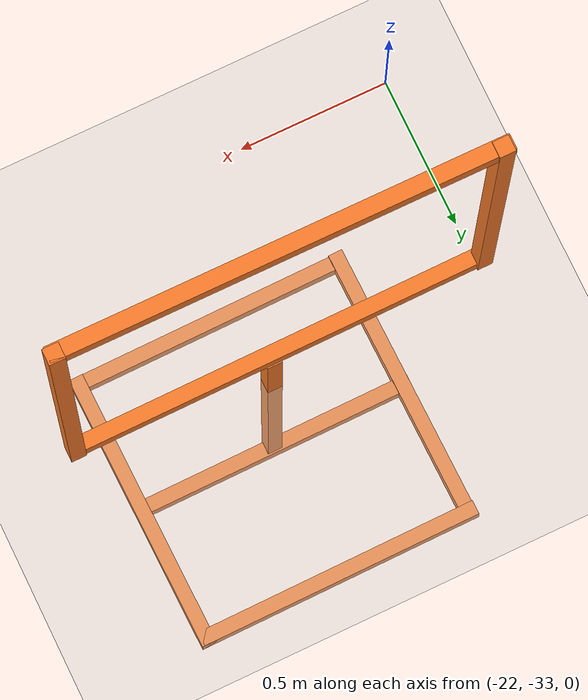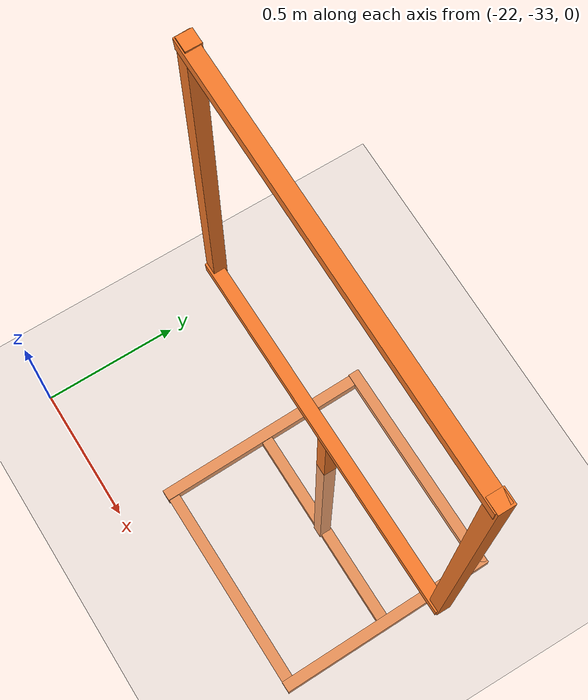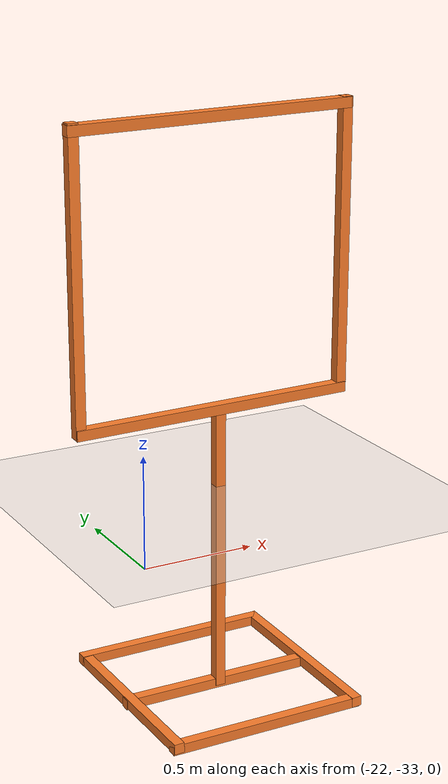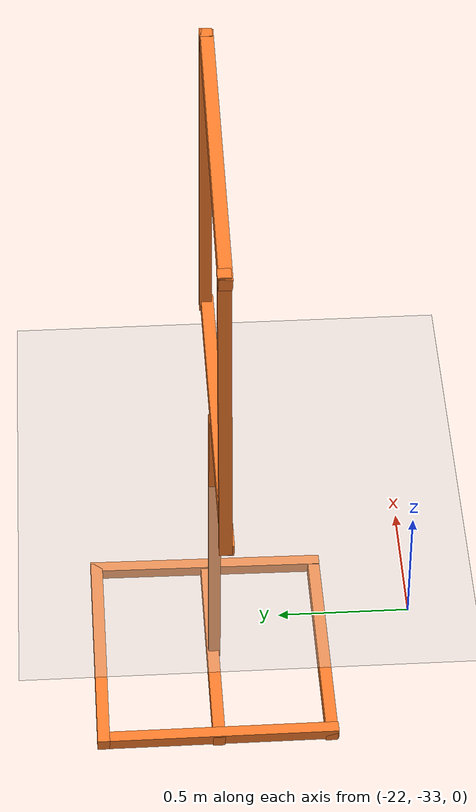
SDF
<sdf version="1.6">
 <world name="default">
  <model name="ground_plane">
   <static>1</static>
   <link name="link">
    <collision name="collision">
     <geometry><plane><normal>0 0 1</normal><size>100 100</size></plane></geometry>
     <surface><friction><ode><mu>100</mu><mu2>50</mu2></ode></friction></surface>
    </collision>
    <visual name="visual">
     <cast_shadows>0</cast_shadows>
     <geometry><plane><normal>0 0 1</normal><size>100 100</size></plane></geometry>
     <material>
      <script><uri>file://media/materials/scripts/gazebo.material</uri><name>Gazebo/Grey</name></script>
     </material>
    </visual>
    <velocity_decay><linear>0</linear><angular>0</angular></velocity_decay>
   </link>
  </model>
  <model name="closed_gate_clone_clone_0_clone_0">
   <link name="link">
    <inertial>
     <mass>1</mass>
     <inertia>
      <ixx>0.166667</ixx>
      <ixy>0</ixy>
      <ixz>0</ixz>
      <iyy>0.166667</iyy>
      <iyz>0</iyz>
      <izz>0.166667</izz>
     </inertia>
    </inertial>
    <pose>0.404756 -0.715724 1.41623 0 -0 0</pose>
    <visual name="visual">
     <geometry><box><size>0.05 0.05 1.4</size></box></geometry>
     <material>
      <script><name>Gazebo/Grey</name><uri>file://media/materials/scripts/gazebo.material</uri></script>
      <shader type="vertex"><normal_map>__default__</normal_map></shader>
      <ambient>0.976 0.484 0.164 1</ambient>
      <diffuse>0.976 0.484 0.164 1</diffuse>
      <specular>0.01 0.01 0.01 1</specular>
      <emissive>0 0 0 1</emissive>
     </material>
    </visual>
    <collision name="collision">
     <geometry><box><size>0.05 0.05 1.4</size></box></geometry>
     <surface>
      <friction>
       <ode><mu>1</mu><mu2>1</mu2><fdir1>0 0 0</fdir1><slip1>0</slip1><slip2>0</slip2></ode>
       <torsional>
        <coefficient>1</coefficient>
        <patch_radius>0</patch_radius>
        <surface_radius>0</surface_radius>
        <use_patch_radius>1</use_patch_radius>
        <ode><slip>0</slip></ode>
       </torsional>
      </friction>
      <bounce><restitution_coefficient>0</restitution_coefficient><threshold>1e+06</threshold></bounce>
      <contact>
       <collide_without_contact>0</collide_without_contact>
       <collide_without_contact_bitmask>1</collide_without_contact_bitmask>
       <collide_bitmask>1</collide_bitmask>
       <ode>
        <soft_cfm>0</soft_cfm>
        <soft_erp>0.2</soft_erp>
        <kp>1e+13</kp>
        <kd>1</kd>
        <max_vel>0.01</max_vel>
        <min_depth>0</min_depth>
       </ode>
       <bullet>
        <split_impulse>1</split_impulse>
        <split_impulse_penetration_threshold>-0.01</split_impulse_penetration_threshold>
        <soft_cfm>0</soft_cfm>
        <soft_erp>0.2</soft_erp>
        <kp>1e+13</kp>
        <kd>1</kd>
       </bullet>
      </contact>
     </surface>
    </collision>
   </link>
   <link name="link_clone_0_clone_0">
    <inertial>
     <mass>1</mass>
     <inertia>
      <ixx>0.166667</ixx>
      <ixy>0</ixy>
      <ixz>0</ixz>
      <iyy>0.166667</iyy>
      <iyz>0</iyz>
      <izz>0.166667</izz>
     </inertia>
    </inertial>
    <pose>1.11096 -0.693594 -0.667388 -1.57955 0.044957 -1.56415</pose>
    <visual name="visual">
     <geometry><box><size>0.05 0.05 1</size></box></geometry>
     <material>
      <script><name>Gazebo/Grey</name><uri>file://media/materials/scripts/gazebo.material</uri></script>
      <shader type="vertex"><normal_map>__default__</normal_map></shader>
      <ambient>0.976 0.484 0.164 1</ambient>
      <diffuse>0.976 0.484 0.164 1</diffuse>
      <specular>0.01 0.01 0.01 1</specular>
      <emissive>0 0 0 1</emissive>
     </material>
    </visual>
    <collision name="collision">
     <geometry><box><size>0.05 0.05 1</size></box></geometry>
     <surface>
      <friction>
       <ode><mu>1</mu><mu2>1</mu2><fdir1>0 0 0</fdir1><slip1>0</slip1><slip2>0</slip2></ode>
       <torsional>
        <coefficient>1</coefficient>
        <patch_radius>0</patch_radius>
        <surface_radius>0</surface_radius>
        <use_patch_radius>1</use_patch_radius>
        <ode><slip>0</slip></ode>
       </torsional>
      </friction>
      <bounce><restitution_coefficient>0</restitution_coefficient><threshold>1e+06</threshold></bounce>
      <contact>
       <collide_without_contact>0</collide_without_contact>
       <collide_without_contact_bitmask>1</collide_without_contact_bitmask>
       <collide_bitmask>1</collide_bitmask>
       <ode>
        <soft_cfm>0</soft_cfm>
        <soft_erp>0.2</soft_erp>
        <kp>1e+13</kp>
        <kd>1</kd>
        <max_vel>0.01</max_vel>
        <min_depth>0</min_depth>
       </ode>
       <bullet>
        <split_impulse>1</split_impulse>
        <split_impulse_penetration_threshold>-0.01</split_impulse_penetration_threshold>
        <soft_cfm>0</soft_cfm>
        <soft_erp>0.2</soft_erp>
        <kp>1e+13</kp>
        <kd>1</kd>
       </bullet>
      </contact>
     </surface>
    </collision>
   </link>
   <link name="link_clone_0_clone_0_clone">
    <inertial>
     <mass>1</mass>
     <inertia>
      <ixx>0.166667</ixx>
      <ixy>0</ixy>
      <ixz>0</ixz>
      <iyy>0.166667</iyy>
      <iyz>0</iyz>
      <izz>0.166667</izz>
     </inertia>
    </inertial>
    <pose>0.637485 -0.695511 -0.656732 -1.55146 -0.019345 0.017432</pose>
    <visual name="visual">
     <geometry><box><size>0.05 0.05 1</size></box></geometry>
     <material>
      <script><name>Gazebo/Grey</name><uri>file://media/materials/scripts/gazebo.material</uri></script>
      <shader type="vertex"><normal_map>__default__</normal_map></shader>
      <ambient>0.976 0.484 0.164 1</ambient>
      <diffuse>0.976 0.484 0.164 1</diffuse>
      <specular>0.01 0.01 0.01 1</specular>
      <emissive>0 0 0 1</emissive>
     </material>
    </visual>
    <collision name="collision">
     <geometry><box><size>0.05 0.05 1</size></box></geometry>
     <surface>
      <friction>
       <ode><mu>1</mu><mu2>1</mu2><fdir1>0 0 0</fdir1><slip1>0</slip1><slip2>0</slip2></ode>
       <torsional>
        <coefficient>1</coefficient>
        <patch_radius>0</patch_radius>
        <surface_radius>0</surface_radius>
        <use_patch_radius>1</use_patch_radius>
        <ode><slip>0</slip></ode>
       </torsional>
      </friction>
      <bounce><restitution_coefficient>0</restitution_coefficient><threshold>1e+06</threshold></bounce>
      <contact>
       <collide_without_contact>0</collide_without_contact>
       <collide_without_contact_bitmask>1</collide_without_contact_bitmask>
       <collide_bitmask>1</collide_bitmask>
       <ode>
        <soft_cfm>0</soft_cfm>
        <soft_erp>0.2</soft_erp>
        <kp>1e+13</kp>
        <kd>1</kd>
        <max_vel>0.01</max_vel>
        <min_depth>0</min_depth>
       </ode>
       <bullet>
        <split_impulse>1</split_impulse>
        <split_impulse_penetration_threshold>-0.01</split_impulse_penetration_threshold>
        <soft_cfm>0</soft_cfm>
        <soft_erp>0.2</soft_erp>
        <kp>1e+13</kp>
        <kd>1</kd>
       </bullet>
      </contact>
     </surface>
    </collision>
   </link>
   <link name="link_clone_0_clone_0_clone_0">
    <inertial>
     <mass>1</mass>
     <inertia>
      <ixx>0.166667</ixx>
      <ixy>0</ixy>
      <ixz>0</ixz>
      <iyy>0.166667</iyy>
      <iyz>0</iyz>
      <izz>0.166667</izz>
     </inertia>
    </inertial>
    <pose>1.12077 -1.16283 -0.677317 -1.57839 0.053451 -1.56287</pose>
    <visual name="visual">
     <geometry><box><size>0.05 0.05 1</size></box></geometry>
     <material>
      <script><name>Gazebo/Grey</name><uri>file://media/materials/scripts/gazebo.material</uri></script>
      <shader type="vertex"><normal_map>__default__</normal_map></shader>
      <ambient>0.976 0.484 0.164 1</ambient>
      <diffuse>0.976 0.484 0.164 1</diffuse>
      <specular>0.01 0.01 0.01 1</specular>
      <emissive>0 0 0 1</emissive>
     </material>
    </visual>
    <collision name="collision">
     <geometry><box><size>0.05 0.05 1</size></box></geometry>
     <surface>
      <friction>
       <ode><mu>1</mu><mu2>1</mu2><fdir1>0 0 0</fdir1><slip1>0</slip1><slip2>0</slip2></ode>
       <torsional>
        <coefficient>1</coefficient>
        <patch_radius>0</patch_radius>
        <surface_radius>0</surface_radius>
        <use_patch_radius>1</use_patch_radius>
        <ode><slip>0</slip></ode>
       </torsional>
      </friction>
      <bounce><restitution_coefficient>0</restitution_coefficient><threshold>1e+06</threshold></bounce>
      <contact>
       <collide_without_contact>0</collide_without_contact>
       <collide_without_contact_bitmask>1</collide_without_contact_bitmask>
       <collide_bitmask>1</collide_bitmask>
       <ode>
        <soft_cfm>0</soft_cfm>
        <soft_erp>0.2</soft_erp>
        <kp>1e+13</kp>
        <kd>1</kd>
        <max_vel>0.01</max_vel>
        <min_depth>0</min_depth>
       </ode>
       <bullet>
        <split_impulse>1</split_impulse>
        <split_impulse_penetration_threshold>-0.01</split_impulse_penetration_threshold>
        <soft_cfm>0</soft_cfm>
        <soft_erp>0.2</soft_erp>
        <kp>1e+13</kp>
        <kd>1</kd>
       </bullet>
      </contact>
     </surface>
    </collision>
   </link>
   <link name="link_clone_0_clone_0_clone_2">
    <inertial>
     <mass>1</mass>
     <inertia>
      <ixx>0.166667</ixx>
      <ixy>0</ixy>
      <ixz>0</ixz>
      <iyy>0.166667</iyy>
      <iyz>0</iyz>
      <izz>0.166667</izz>
     </inertia>
    </inertial>
    <pose>1.10088 -0.214462 -0.645898 -1.57451 0.053447 -1.56287</pose>
    <visual name="visual">
     <geometry><box><size>0.05 0.05 1</size></box></geometry>
     <material>
      <script><name>Gazebo/Grey</name><uri>file://media/materials/scripts/gazebo.material</uri></script>
      <shader type="vertex"><normal_map>__default__</normal_map></shader>
      <ambient>0.976 0.484 0.164 1</ambient>
      <diffuse>0.976 0.484 0.164 1</diffuse>
      <specular>0.01 0.01 0.01 1</specular>
      <emissive>0 0 0 1</emissive>
     </material>
    </visual>
    <collision name="collision">
     <geometry><box><size>0.05 0.05 1</size></box></geometry>
     <surface>
      <friction>
       <ode><mu>1</mu><mu2>1</mu2><fdir1>0 0 0</fdir1><slip1>0</slip1><slip2>0</slip2></ode>
       <torsional>
        <coefficient>1</coefficient>
        <patch_radius>0</patch_radius>
        <surface_radius>0</surface_radius>
        <use_patch_radius>1</use_patch_radius>
        <ode><slip>0</slip></ode>
       </torsional>
      </friction>
      <bounce><restitution_coefficient>0</restitution_coefficient><threshold>1e+06</threshold></bounce>
      <contact>
       <collide_without_contact>0</collide_without_contact>
       <collide_without_contact_bitmask>1</collide_without_contact_bitmask>
       <collide_bitmask>1</collide_bitmask>
       <ode>
        <soft_cfm>0</soft_cfm>
        <soft_erp>0.2</soft_erp>
        <kp>1e+13</kp>
        <kd>1</kd>
        <max_vel>0.01</max_vel>
        <min_depth>0</min_depth>
       </ode>
       <bullet>
        <split_impulse>1</split_impulse>
        <split_impulse_penetration_threshold>-0.01</split_impulse_penetration_threshold>
        <soft_cfm>0</soft_cfm>
        <soft_erp>0.2</soft_erp>
        <kp>1e+13</kp>
        <kd>1</kd>
       </bullet>
      </contact>
     </surface>
    </collision>
   </link>
   <link name="link_clone_0_clone_0_clone_clone">
    <inertial>
     <mass>1</mass>
     <inertia>
      <ixx>0.166667</ixx>
      <ixy>0</ixy>
      <ixz>0</ixz>
      <iyy>0.166667</iyy>
      <iyz>0</iyz>
      <izz>0.166667</izz>
     </inertia>
    </inertial>
    <pose>1.59453 -0.684923 -0.663241 -1.53838 -0.023075 0.018345</pose>
    <visual name="visual">
     <geometry><box><size>0.05 0.05 1</size></box></geometry>
     <material>
      <script><name>Gazebo/Grey</name><uri>file://media/materials/scripts/gazebo.material</uri></script>
      <shader type="vertex"><normal_map>__default__</normal_map></shader>
      <ambient>0.976 0.484 0.164 1</ambient>
      <diffuse>0.976 0.484 0.164 1</diffuse>
      <specular>0.01 0.01 0.01 1</specular>
      <emissive>0 0 0 1</emissive>
     </material>
    </visual>
    <collision name="collision">
     <geometry><box><size>0.05 0.05 1</size></box></geometry>
     <surface>
      <friction>
       <ode><mu>1</mu><mu2>1</mu2><fdir1>0 0 0</fdir1><slip1>0</slip1><slip2>0</slip2></ode>
       <torsional>
        <coefficient>1</coefficient>
        <patch_radius>0</patch_radius>
        <surface_radius>0</surface_radius>
        <use_patch_radius>1</use_patch_radius>
        <ode><slip>0</slip></ode>
       </torsional>
      </friction>
      <bounce><restitution_coefficient>0</restitution_coefficient><threshold>1e+06</threshold></bounce>
      <contact>
       <collide_without_contact>0</collide_without_contact>
       <collide_without_contact_bitmask>1</collide_without_contact_bitmask>
       <collide_bitmask>1</collide_bitmask>
       <ode>
        <soft_cfm>0</soft_cfm>
        <soft_erp>0.2</soft_erp>
        <kp>1e+13</kp>
        <kd>1</kd>
        <max_vel>0.01</max_vel>
        <min_depth>0</min_depth>
       </ode>
       <bullet>
        <split_impulse>1</split_impulse>
        <split_impulse_penetration_threshold>-0.01</split_impulse_penetration_threshold>
        <soft_cfm>0</soft_cfm>
        <soft_erp>0.2</soft_erp>
        <kp>1e+13</kp>
        <kd>1</kd>
       </bullet>
      </contact>
     </surface>
    </collision>
   </link>
   <link name="link_clone_0_clone_1">
    <inertial>
     <mass>1</mass>
     <inertia>
      <ixx>0.166667</ixx>
      <ixy>0</ixy>
      <ixz>0</ixz>
      <iyy>0.166667</iyy>
      <iyz>0</iyz>
      <izz>0.166667</izz>
     </inertia>
    </inertial>
    <pose>1.08198 -0.717602 0.744079 -1.56201 0.04483 -1.56244</pose>
    <visual name="visual">
     <geometry><box><size>0.05 0.05 1.4</size></box></geometry>
     <material>
      <script><name>Gazebo/Grey</name><uri>file://media/materials/scripts/gazebo.material</uri></script>
      <shader type="vertex"><normal_map>__default__</normal_map></shader>
      <ambient>0.976 0.484 0.164 1</ambient>
      <diffuse>0.976 0.484 0.164 1</diffuse>
      <specular>0.01 0.01 0.01 1</specular>
      <emissive>0 0 0 1</emissive>
     </material>
    </visual>
    <collision name="collision">
     <geometry><box><size>0.05 0.05 1.4</size></box></geometry>
     <surface>
      <friction>
       <ode><mu>1</mu><mu2>1</mu2><fdir1>0 0 0</fdir1><slip1>0</slip1><slip2>0</slip2></ode>
       <torsional>
        <coefficient>1</coefficient>
        <patch_radius>0</patch_radius>
        <surface_radius>0</surface_radius>
        <use_patch_radius>1</use_patch_radius>
        <ode><slip>0</slip></ode>
       </torsional>
      </friction>
      <bounce><restitution_coefficient>0</restitution_coefficient><threshold>1e+06</threshold></bounce>
      <contact>
       <collide_without_contact>0</collide_without_contact>
       <collide_without_contact_bitmask>1</collide_without_contact_bitmask>
       <collide_bitmask>1</collide_bitmask>
       <ode>
        <soft_cfm>0</soft_cfm>
        <soft_erp>0.2</soft_erp>
        <kp>1e+13</kp>
        <kd>1</kd>
        <max_vel>0.01</max_vel>
        <min_depth>0</min_depth>
       </ode>
       <bullet>
        <split_impulse>1</split_impulse>
        <split_impulse_penetration_threshold>-0.01</split_impulse_penetration_threshold>
        <soft_cfm>0</soft_cfm>
        <soft_erp>0.2</soft_erp>
        <kp>1e+13</kp>
        <kd>1</kd>
       </bullet>
      </contact>
     </surface>
    </collision>
   </link>
   <link name="link_clone_0_clone_1_clone">
    <inertial>
     <mass>1</mass>
     <inertia>
      <ixx>0.166667</ixx>
      <ixy>0</ixy>
      <ixz>0</ixz>
      <iyy>0.166667</iyy>
      <iyz>0</iyz>
      <izz>0.166667</izz>
     </inertia>
    </inertial>
    <pose>1.07529 -0.719849 2.09328 -1.55888 0.053444 -1.57124</pose>
    <visual name="visual">
     <geometry><box><size>0.05 0.05 1.4</size></box></geometry>
     <material>
      <script><name>Gazebo/Grey</name><uri>file://media/materials/scripts/gazebo.material</uri></script>
      <shader type="vertex"><normal_map>__default__</normal_map></shader>
      <ambient>0.976 0.484 0.164 1</ambient>
      <diffuse>0.976 0.484 0.164 1</diffuse>
      <specular>0.01 0.01 0.01 1</specular>
      <emissive>0 0 0 1</emissive>
     </material>
    </visual>
    <collision name="collision">
     <geometry><box><size>0.05 0.05 1.4</size></box></geometry>
     <surface>
      <friction>
       <ode><mu>1</mu><mu2>1</mu2><fdir1>0 0 0</fdir1><slip1>0</slip1><slip2>0</slip2></ode>
       <torsional>
        <coefficient>1</coefficient>
        <patch_radius>0</patch_radius>
        <surface_radius>0</surface_radius>
        <use_patch_radius>1</use_patch_radius>
        <ode><slip>0</slip></ode>
       </torsional>
      </friction>
      <bounce><restitution_coefficient>0</restitution_coefficient><threshold>1e+06</threshold></bounce>
      <contact>
       <collide_without_contact>0</collide_without_contact>
       <collide_without_contact_bitmask>1</collide_without_contact_bitmask>
       <collide_bitmask>1</collide_bitmask>
       <ode>
        <soft_cfm>0</soft_cfm>
        <soft_erp>0.2</soft_erp>
        <kp>1e+13</kp>
        <kd>1</kd>
        <max_vel>0.01</max_vel>
        <min_depth>0</min_depth>
       </ode>
       <bullet>
        <split_impulse>1</split_impulse>
        <split_impulse_penetration_threshold>-0.01</split_impulse_penetration_threshold>
        <soft_cfm>0</soft_cfm>
        <soft_erp>0.2</soft_erp>
        <kp>1e+13</kp>
        <kd>1</kd>
       </bullet>
      </contact>
     </surface>
    </collision>
   </link>
   <link name="link_clone_1">
    <inertial>
     <mass>1</mass>
     <inertia>
      <ixx>0.166667</ixx>
      <ixy>0</ixy>
      <ixz>0</ixz>
      <iyy>0.166667</iyy>
      <iyz>0</iyz>
      <izz>0.166667</izz>
     </inertia>
    </inertial>
    <pose>1.11167 -0.706269 0.02254 0.008527 -0.003582 0.001077</pose>
    <visual name="visual">
     <geometry><box><size>0.05 0.05 1.4</size></box></geometry>
     <material>
      <script><name>Gazebo/Grey</name><uri>file://media/materials/scripts/gazebo.material</uri></script>
      <shader type="vertex"><normal_map>__default__</normal_map></shader>
      <ambient>0.976 0.484 0.164 1</ambient>
      <diffuse>0.976 0.484 0.164 1</diffuse>
      <specular>0.01 0.01 0.01 1</specular>
      <emissive>0 0 0 1</emissive>
     </material>
    </visual>
    <collision name="collision">
     <geometry><box><size>0.05 0.05 1.4</size></box></geometry>
     <surface>
      <friction>
       <ode><mu>1</mu><mu2>1</mu2><fdir1>0 0 0</fdir1><slip1>0</slip1><slip2>0</slip2></ode>
       <torsional>
        <coefficient>1</coefficient>
        <patch_radius>0</patch_radius>
        <surface_radius>0</surface_radius>
        <use_patch_radius>1</use_patch_radius>
        <ode><slip>0</slip></ode>
       </torsional>
      </friction>
      <bounce><restitution_coefficient>0</restitution_coefficient><threshold>1e+06</threshold></bounce>
      <contact>
       <collide_without_contact>0</collide_without_contact>
       <collide_without_contact_bitmask>1</collide_without_contact_bitmask>
       <collide_bitmask>1</collide_bitmask>
       <ode>
        <soft_cfm>0</soft_cfm>
        <soft_erp>0.2</soft_erp>
        <kp>1e+13</kp>
        <kd>1</kd>
        <max_vel>0.01</max_vel>
        <min_depth>0</min_depth>
       </ode>
       <bullet>
        <split_impulse>1</split_impulse>
        <split_impulse_penetration_threshold>-0.01</split_impulse_penetration_threshold>
        <soft_cfm>0</soft_cfm>
        <soft_erp>0.2</soft_erp>
        <kp>1e+13</kp>
        <kd>1</kd>
       </bullet>
      </contact>
     </surface>
    </collision>
   </link>
   <link name="link_clone_7">
    <inertial>
     <mass>1</mass>
     <inertia>
      <ixx>0.166667</ixx>
      <ixy>0</ixy>
      <ixz>0</ixz>
      <iyy>0.166667</iyy>
      <iyz>0</iyz>
      <izz>0.166667</izz>
     </inertia>
    </inertial>
    <pose>1.75876 -0.711707 1.42733 0.008527 -0.003582 0.001077</pose>
    <visual name="visual">
     <geometry><box><size>0.05 0.05 1.4</size></box></geometry>
     <material>
      <script><name>Gazebo/Grey</name><uri>file://media/materials/scripts/gazebo.material</uri></script>
      <shader type="vertex"><normal_map>__default__</normal_map></shader>
      <ambient>0.976 0.484 0.164 1</ambient>
      <diffuse>0.976 0.484 0.164 1</diffuse>
      <specular>0.01 0.01 0.01 1</specular>
      <emissive>0 0 0 1</emissive>
     </material>
    </visual>
    <collision name="collision">
     <geometry><box><size>0.05 0.05 1.4</size></box></geometry>
     <surface>
      <friction>
       <ode><mu>1</mu><mu2>1</mu2><fdir1>0 0 0</fdir1><slip1>0</slip1><slip2>0</slip2></ode>
       <torsional>
        <coefficient>1</coefficient>
        <patch_radius>0</patch_radius>
        <surface_radius>0</surface_radius>
        <use_patch_radius>1</use_patch_radius>
        <ode><slip>0</slip></ode>
       </torsional>
      </friction>
      <bounce><restitution_coefficient>0</restitution_coefficient><threshold>1e+06</threshold></bounce>
      <contact>
       <collide_without_contact>0</collide_without_contact>
       <collide_without_contact_bitmask>1</collide_without_contact_bitmask>
       <collide_bitmask>1</collide_bitmask>
       <ode>
        <soft_cfm>0</soft_cfm>
        <soft_erp>0.2</soft_erp>
        <kp>1e+13</kp>
        <kd>1</kd>
        <max_vel>0.01</max_vel>
        <min_depth>0</min_depth>
       </ode>
       <bullet>
        <split_impulse>1</split_impulse>
        <split_impulse_penetration_threshold>-0.01</split_impulse_penetration_threshold>
        <soft_cfm>0</soft_cfm>
        <soft_erp>0.2</soft_erp>
        <kp>1e+13</kp>
        <kd>1</kd>
       </bullet>
      </contact>
     </surface>
    </collision>
   </link>
   <static>1</static>
   <pose>-22.3789 -31.5829 -0.36646 0 -0 0</pose>
  </model>
 </world>
</sdf>
